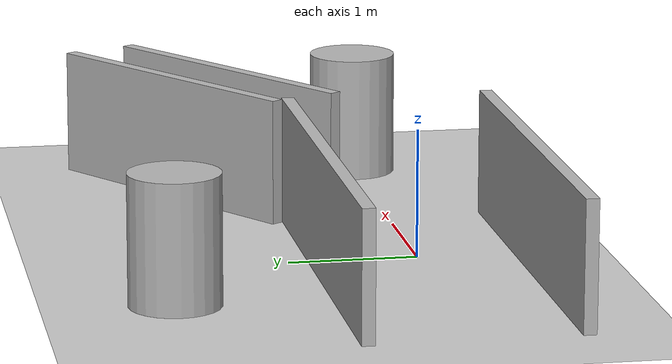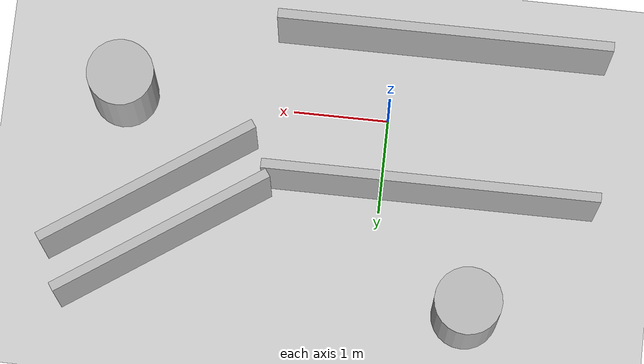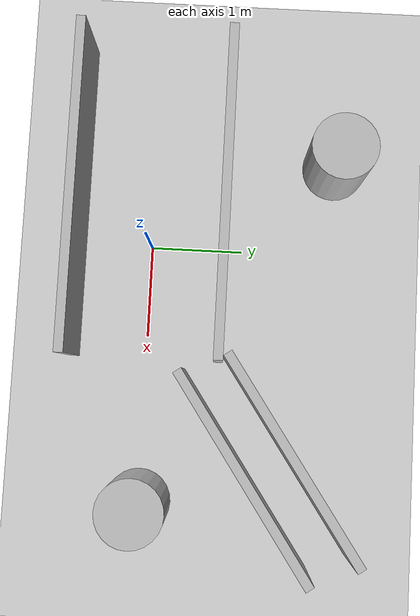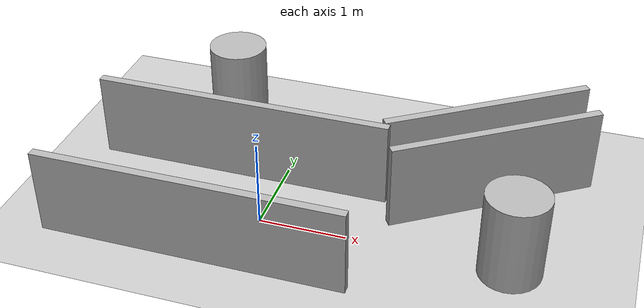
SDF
<sdf version="1.7">
  <world name="my_world">
    <!-- Luz -->
    <light name="sun" type="directional">
      <pose>0 0 10 0 0 0</pose>
      <direction>-0.5 0.5 -1</direction>
      <diffuse>1 1 1 1</diffuse>
      <specular>0.1 0.1 0.1 1</specular>
    </light>

    <!-- Chão -->
    <model name="ground">
      <static>true</static>
      <link name="link">
        <collision name="col">
          <geometry><plane><normal>0 0 1</normal><size>50 50</size></plane></geometry>
        </collision>
        <visual name="vis">
          <geometry><plane><normal>0 0 1</normal><size>50 50</size></plane></geometry>
          <material><diffuse>0.8 0.8 0.8 1</diffuse></material>
        </visual>
      </link>
    </model>

    <model name="corridor1_left">
      <static>true</static>
      <!-- centro: x=-0.5, y=0.80 -->
      <pose>-0.5 0.80 0.5 0 0 0</pose>
      <link name="link">
        <collision name="col">
          <geometry><box><size>3.5 0.1 1.0</size></box></geometry>
        </collision>
        <visual name="vis">
          <geometry><box><size>3.5 0.1 1.0</size></box></geometry>
        </visual>
      </link>
    </model>

    <model name="corridor1_right">
      <static>true</static>
      <!-- centro: x=-0.5, y=-0.80 -->
      <pose>-0.5 -0.80 0.5 0 0 0</pose>
      <link name="link">
        <collision name="col">
          <geometry><box><size>3.5 0.1 1.0</size></box></geometry>
        </collision>
        <visual name="vis">
          <geometry><box><size>3.5 0.1 1.0</size></box></geometry>
        </visual>
      </link>
    </model>

    <model name="corridor2_left">
      <static>true</static>
      <!-- centro: x=2.2, y=1.6, yaw ~ 35° -->
      <pose>2.2 1.6 0.5 0 0 0.6</pose>
      <link name="link">
        <collision name="col">
          <geometry><box><size>2.5 0.1 1.0</size></box></geometry>
        </collision>
        <visual name="vis">
          <geometry><box><size>2.5 0.1 1.0</size></box></geometry>
        </visual>
      </link>
    </model>

    <model name="corridor2_right">
      <static>true</static>
      <!-- centro: x=2.4, y=1.1, yaw ~ 35° -->
      <pose>2.4 1.1 0.5 0 0 0.6</pose>
      <link name="link">
        <collision name="col">
          <geometry><box><size>2.5 0.1 1.0</size></box></geometry>
        </collision>
        <visual name="vis">
          <geometry><box><size>2.5 0.1 1.0</size></box></geometry>
        </visual>
      </link>
    </model>

    <model name="cylinder_left">
      <static>true</static>
      <pose>-1.0 2.0 0.5 0 0 0</pose>
      <link name="link">
        <collision name="col">
          <geometry>
            <cylinder>
              <radius>0.35</radius>
              <length>1.0</length>
            </cylinder>
          </geometry>
        </collision>
        <visual name="vis">
          <geometry>
            <cylinder>
              <radius>0.35</radius>
              <length>1.0</length>
            </cylinder>
          </geometry>
        </visual>
      </link>
    </model>

    <model name="cylinder_right">
      <static>true</static>
      <pose>2.8 0.0 0.5 0 0 0</pose>
      <link name="link">
        <collision name="col">
          <geometry>
            <cylinder>
              <radius>0.35</radius>
              <length>1.0</length>
            </cylinder>
          </geometry>
        </collision>
        <visual name="vis">
          <geometry>
            <cylinder>
              <radius>0.35</radius>
              <length>1.0</length>
            </cylinder>
          </geometry>
        </visual>
      </link>
    </model>

  </world>
</sdf>
